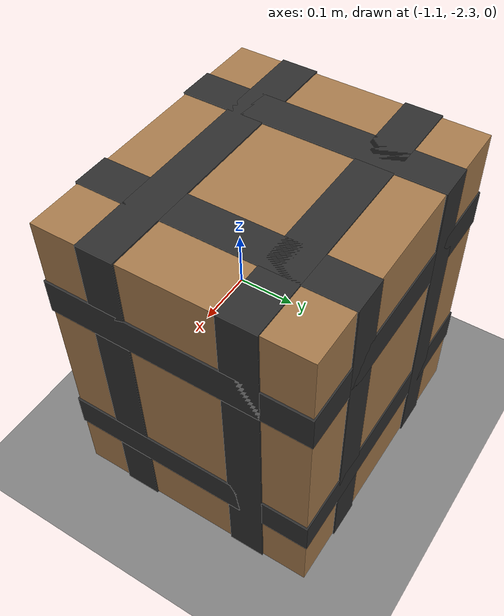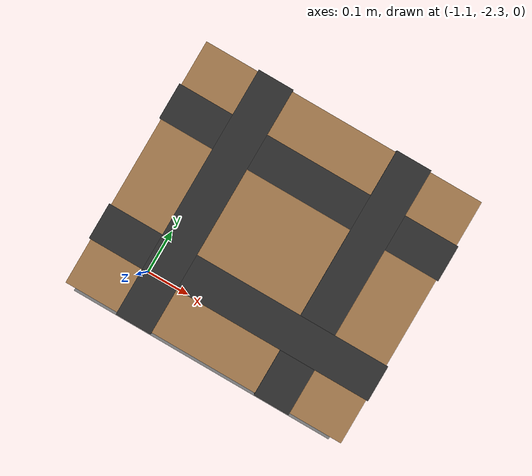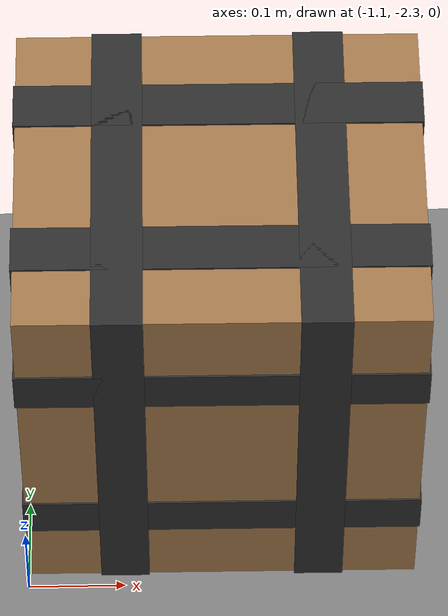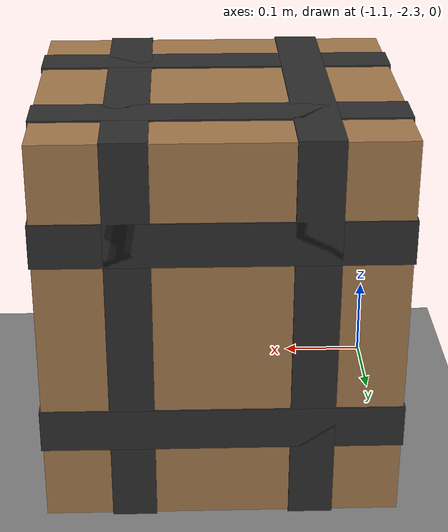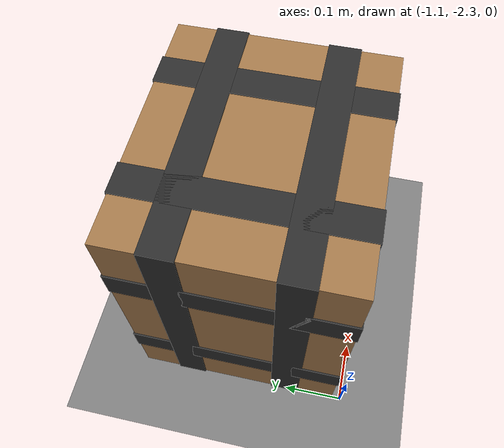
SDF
<sdf version="1.9">
 <world name="ecps295_lowbox_s34">
  <model name="ground_plane">
   <static>true</static>
   <link name="link">
    <collision name="collision">
     <geometry><plane><normal>0 0 1</normal><size>50 50</size></plane></geometry>
    </collision>
    <visual name="visual">
     <geometry><plane><normal>0 0 1</normal><size>50 50</size></plane></geometry>
     <material><ambient>0.5 0.5 0.5 1</ambient><diffuse>0.5 0.5 0.5 1</diffuse></material>
    </visual>
   </link>
  </model>
  <model name="lb1">
   <static>true</static>
   <pose>-0.9 -2.11 0.226 0 0 0</pose>
   <link name="link">
    <collision name="c"><geometry><box><size>0.4 0.35 0.45</size></box></geometry></collision>
    <visual name="v">
     <geometry><box><size>0.4 0.35 0.45</size></box></geometry>
     <material><ambient>0.65 0.48 0.30 1</ambient><diffuse>0.65 0.48 0.30 1</diffuse></material>
    </visual>
    <visual name="tape_ring0">
     <pose>0.000 0.000 -0.113 0 0 0</pose>
     <geometry><box><size>0.404 0.354 0.050</size></box></geometry>
     <material><ambient>0.18 0.18 0.18 1</ambient><diffuse>0.18 0.18 0.18 1</diffuse></material>
    </visual>
    <visual name="tape_bx0">
     <pose>-0.100 0.000 0.000 0 0 0</pose>
     <geometry><box><size>0.050 0.354 0.454</size></box></geometry>
     <material><ambient>0.18 0.18 0.18 1</ambient><diffuse>0.18 0.18 0.18 1</diffuse></material>
    </visual>
    <visual name="tape_by0">
     <pose>0.000 -0.087 0.000 0 0 0</pose>
     <geometry><box><size>0.404 0.050 0.454</size></box></geometry>
     <material><ambient>0.18 0.18 0.18 1</ambient><diffuse>0.18 0.18 0.18 1</diffuse></material>
    </visual>
    <visual name="tape_ring1">
     <pose>0.000 0.000 0.113 0 0 0</pose>
     <geometry><box><size>0.404 0.354 0.050</size></box></geometry>
     <material><ambient>0.18 0.18 0.18 1</ambient><diffuse>0.18 0.18 0.18 1</diffuse></material>
    </visual>
    <visual name="tape_bx1">
     <pose>0.100 0.000 0.000 0 0 0</pose>
     <geometry><box><size>0.050 0.354 0.454</size></box></geometry>
     <material><ambient>0.18 0.18 0.18 1</ambient><diffuse>0.18 0.18 0.18 1</diffuse></material>
    </visual>
    <visual name="tape_by1">
     <pose>0.000 0.087 0.000 0 0 0</pose>
     <geometry><box><size>0.404 0.050 0.454</size></box></geometry>
     <material><ambient>0.18 0.18 0.18 1</ambient><diffuse>0.18 0.18 0.18 1</diffuse></material>
    </visual>
   </link>
  </model>
 </world>
</sdf>
